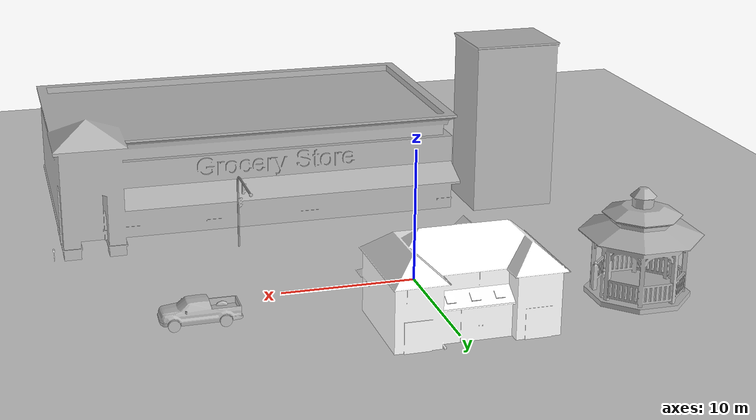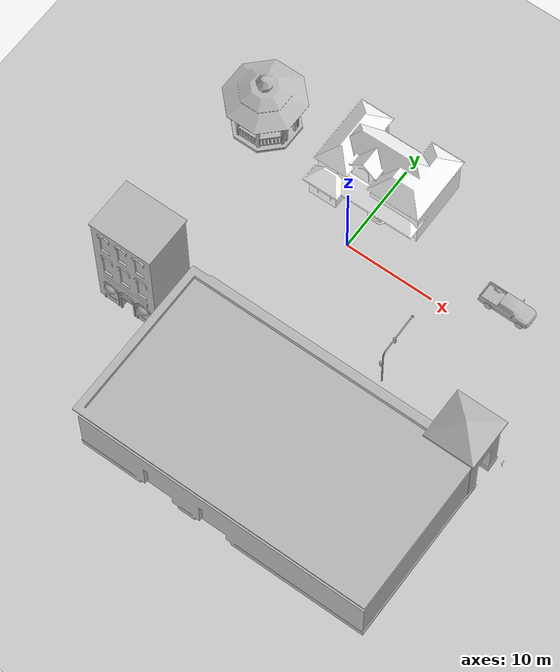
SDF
<sdf version="1.6">
 <world name="default">
  <light name="sun" type="directional">
   <pose>0 0 10 0 -0 0</pose>
   <diffuse>0.8 0.8 0.8 1</diffuse>
   <specular>0.2 0.2 0.2 1</specular>
   <attenuation>
    <range>1000</range>
    <constant>0.9</constant>
    <linear>0.01</linear>
    <quadratic>0.001</quadratic>
   </attenuation>
   <direction>-0.5 0.1 -0.9</direction>
  </light>
  <model name="ground_plane">
   <static>1</static>
   <link name="link">
    <collision name="collision">
     <geometry><plane><normal>0 0 1</normal><size>100 100</size></plane></geometry>
     <surface><friction><ode><mu>100</mu><mu2>50</mu2></ode></friction></surface>
    </collision>
    <visual name="visual">
     <cast_shadows>0</cast_shadows>
     <geometry><plane><normal>0 0 1</normal><size>100 100</size></plane></geometry>
     <material>
      <script><uri>file://media/materials/scripts/gazebo.material</uri><name>Gazebo/Grey</name></script>
     </material>
    </visual>
   </link>
  </model>
  <gravity>0 0 -9.8</gravity>
  <magnetic_field>6e-06 2.3e-05 -4.2e-05</magnetic_field>
  <atmosphere type="adiabatic"/>
  <physics name="default_physics" default="0" type="ode">
   <max_step_size>0.001</max_step_size>
   <real_time_factor>1</real_time_factor>
   <real_time_update_rate>1000</real_time_update_rate>
  </physics>
  <scene><ambient>0.4 0.4 0.4 1</ambient><background>0.7 0.7 0.7 1</background><shadows>1</shadows></scene>
  <spherical_coordinates>
   <surface_model>EARTH_WGS84</surface_model>
   <latitude_deg>0</latitude_deg>
   <longitude_deg>0</longitude_deg>
   <elevation>0</elevation>
   <heading_deg>0</heading_deg>
  </spherical_coordinates>
  <model name="gazebo">
   <static>1</static>
   <link name="link">
    <collision name="collision">
     <geometry><mesh><scale>3 3 2.5</scale><uri>model://gazebo/meshes/gazebo.dae</uri></mesh></geometry>
    </collision>
    <visual name="visual">
     <geometry><mesh><scale>3 3 2.5</scale><uri>model://gazebo/meshes/gazebo.dae</uri></mesh></geometry>
    </visual>
   </link>
   <pose>-14.6374 6.54817 0 0 -0 0</pose>
  </model>
  <model name="grocery_store">
   <static>1</static>
   <link name="link">
    <collision name="collision">
     <pose>0 0 4.04605 0 -0 0</pose>
     <geometry><box><size>32.1985 17.5425 8.09209</size></box></geometry>
    </collision>
    <visual name="visual">
     <pose>0 -1.96155 0 0 -0 0</pose>
     <geometry><mesh><uri>model://grocery_store/meshes/grocery_store.dae</uri></mesh></geometry>
    </visual>
   </link>
   <pose>8.3555 -22.7602 0 0 -0 0</pose>
  </model>
  <model name="law_office">
   <static>1</static>
   <link name="link">
    <collision name="collision">
     <pose>0 0 6.96244 0 -0 0</pose>
     <geometry><box><size>6.84401 5.43165 13.9249</size></box></geometry>
    </collision>
    <visual name="visual">
     <geometry><mesh><uri>model://law_office/meshes/law_office.dae</uri></mesh></geometry>
    </visual>
   </link>
   <pose>-12.7337 -15.3995 0 0 -0 0</pose>
  </model>
  <model name="Mailbox">
   <link name="link">
    <collision name="collision">
     <geometry><mesh><uri>model://mailbox/meshes/mailbox.dae</uri></mesh></geometry>
    </collision>
    <visual name="visual">
     <geometry><mesh><uri>model://mailbox/meshes/mailbox.dae</uri></mesh></geometry>
     <material>
      <script>
       <uri>model://mailbox/materials/scripts</uri>
       <uri>model://mailbox/materials/textures</uri>
       <name>Mailbox/Diffuse</name>
      </script>
     </material>
    </visual>
    <inertial>
     <inertia><ixx>1</ixx><ixy>0</ixy><ixz>0</ixz><iyy>1</iyy><iyz>0</iyz><izz>1</izz></inertia>
     <mass>1</mass>
    </inertial>
   </link>
   <pose>25.2704 -10.3683 -9e-06 0 -7e-06 0</pose>
  </model>
  <model name="House 2">
   <static>1</static>
   <link name="link">
    <collision name="collision">
     <geometry><mesh><uri>model://house_2/meshes/house_2.dae</uri><scale>1.5 1.5 1.5</scale></mesh></geometry>
    </collision>
    <visual name="visual">
     <geometry><mesh><uri>model://house_2/meshes/house_2.dae</uri><scale>1.5 1.5 1.5</scale></mesh></geometry>
     <material>
      <script>
       <uri>model://house_2/materials/scripts</uri>
       <uri>model://house_2/materials/textures</uri>
       <uri>model://house_1/materials/textures</uri>
       <name>House_2/Diffuse</name>
      </script>
      <shader type="normal_map_tangent_space">
       <normal_map>model://house_1/materials/textures/House_1_Normal.png</normal_map>
      </shader>
     </material>
    </visual>
   </link>
   <pose>0.219493 7.8696 0 0 0 -3.13356</pose>
  </model>
  <model name="pickup">
   <static>1</static>
   <link name="link">
    <collision name="collision">
     <pose>0 0 0 0 0 -1.5708</pose>
     <geometry><mesh><uri>model://pickup/meshes/pickup.dae</uri></mesh></geometry>
    </collision>
    <visual name="visual">
     <pose>0 0 0 0 0 -1.5708</pose>
     <geometry><mesh><uri>model://pickup/meshes/pickup.dae</uri></mesh></geometry>
    </visual>
   </link>
   <pose>16.6324 3.43327 0 0 -0 0</pose>
  </model>
  <model name="stop_light_post">
   <static>1</static>
   <link name="link">
    <collision name="post">
     <geometry>
      <mesh><uri>model://stop_light_post/meshes/stop_light_post.obj</uri><scale>0.01 0.01 0.01</scale></mesh>
     </geometry>
    </collision>
    <visual name="post">
     <geometry>
      <mesh><uri>model://stop_light_post/meshes/stop_light_post.obj</uri><scale>0.01 0.01 0.01</scale></mesh>
     </geometry>
    </visual>
   </link>
   <static>1</static>
   <link name="right_light::link">
    <collision name="collision">
     <geometry>
      <mesh><uri>model://stop_light/meshes/stop_light.obj</uri><scale>0.01 0.01 0.01</scale></mesh>
     </geometry>
    </collision>
    <visual name="frame">
     <geometry>
      <mesh><uri>model://stop_light/meshes/stop_light.obj</uri><scale>0.01 0.01 0.01</scale></mesh>
     </geometry>
    </visual>
    <visual name="red">
     <pose>-0.001123 -0.082251 -0.147514 0 -0 0</pose>
     <geometry><sphere><radius>0.1012</radius></sphere></geometry>
     <material>
      <script>
       <uri>model://stop_light/materials/scripts/</uri>
       <uri>model://stop_light/materials/textures/</uri>
       <name>StopLight/Light</name>
      </script>
      <ambient>1 0 0 1</ambient>
      <specular>1 0 0 1</specular>
     </material>
    </visual>
    <visual name="yellow">
     <pose>-0.001123 -0.082251 -0.402 0 -0 0</pose>
     <geometry><sphere><radius>0.1012</radius></sphere></geometry>
     <material>
      <script>
       <uri>model://stop_light/materials/scripts/</uri>
       <uri>model://stop_light/materials/textures/</uri>
       <name>StopLight/Light</name>
      </script>
      <ambient>1 1 0 1</ambient>
      <specular>1 1 0 1</specular>
     </material>
    </visual>
    <visual name="green">
     <pose>-0.001123 -0.082251 -0.655 0 -0 0</pose>
     <geometry><sphere><radius>0.1012</radius></sphere></geometry>
     <material>
      <script>
       <uri>model://stop_light/materials/scripts/</uri>
       <uri>model://stop_light/materials/textures/</uri>
       <name>StopLight/Light</name>
      </script>
      <ambient>0 1 0 1</ambient>
      <specular>0 1 0 1</specular>
     </material>
    </visual>
    <pose>0 -0.05 4 0 -0 0</pose>
   </link>
   <static>1</static>
   <link name="center_light::link">
    <collision name="collision">
     <geometry>
      <mesh><uri>model://stop_light/meshes/stop_light.obj</uri><scale>0.01 0.01 0.01</scale></mesh>
     </geometry>
    </collision>
    <visual name="frame">
     <geometry>
      <mesh><uri>model://stop_light/meshes/stop_light.obj</uri><scale>0.01 0.01 0.01</scale></mesh>
     </geometry>
    </visual>
    <visual name="red">
     <pose>-0.001123 -0.082251 -0.147514 0 -0 0</pose>
     <geometry><sphere><radius>0.1012</radius></sphere></geometry>
     <material>
      <script>
       <uri>model://stop_light/materials/scripts/</uri>
       <uri>model://stop_light/materials/textures/</uri>
       <name>StopLight/Light</name>
      </script>
      <ambient>1 0 0 1</ambient>
      <specular>1 0 0 1</specular>
     </material>
    </visual>
    <visual name="yellow">
     <pose>-0.001123 -0.082251 -0.402 0 -0 0</pose>
     <geometry><sphere><radius>0.1012</radius></sphere></geometry>
     <material>
      <script>
       <uri>model://stop_light/materials/scripts/</uri>
       <uri>model://stop_light/materials/textures/</uri>
       <name>StopLight/Light</name>
      </script>
      <ambient>1 1 0 1</ambient>
      <specular>1 1 0 1</specular>
     </material>
    </visual>
    <visual name="green">
     <pose>-0.001123 -0.082251 -0.655 0 -0 0</pose>
     <geometry><sphere><radius>0.1012</radius></sphere></geometry>
     <material>
      <script>
       <uri>model://stop_light/materials/scripts/</uri>
       <uri>model://stop_light/materials/textures/</uri>
       <name>StopLight/Light</name>
      </script>
      <ambient>0 1 0 1</ambient>
      <specular>0 1 0 1</specular>
     </material>
    </visual>
    <pose>-2 0.04 5.82 0 -0 0</pose>
   </link>
   <pose>11.1236 -9.83533 0 0 0 -1.56039</pose>
  </model>
 </world>
</sdf>
